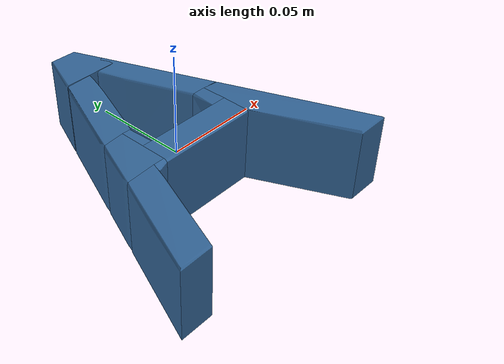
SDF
<?xml version='1.0' encoding='UTF-8'?>
<!-- This SDF was autogenerated by obj_to_drake_sdf.py -->
<sdf version="1.7">
  <model name="A_centered">
    <link name="A_centered">
      <inertial>
        <pose>0 0 0 0 0 0</pose>
        <mass>0.05</mass>
        <inertia>
          <ixx>8.1518702e-05</ixx>
          <iyy>5.8253042e-05</iyy>
          <izz>0.00012665386</izz>
          <ixy>3.1575243e-07</ixy>
          <ixz>-3.5979168e-12</ixz>
          <iyz>-5.9460613e-13</iyz>
        </inertia>
      </inertial>
      <visual name="convex_0">
        <pose>0 0 0 0 0 0</pose>
        <geometry>
          <mesh>
            <uri>A_centered_convex_0.obj</uri>
          </mesh>
        </geometry>
        <material>
          <diffuse>0.19607843137254902 0.39215686274509803 0.5882352941176471 1</diffuse>
        </material>
      </visual>
      <collision name="convex_0_volume">
        <pose>0 0 0 0 0 0</pose>
        <geometry>
          <mesh>
            <uri>A_centered_convex_0.obj</uri>
          </mesh>
        </geometry>
        <drake:proximity_properties xmlns:drake="uri:drake">
          <drake:compliant_hydroelastic/>
          <drake:hydroelastic_modulus> 3.0e7 </drake:hydroelastic_modulus>
          <drake:mesh_resolution_hint> 0.02 </drake:mesh_resolution_hint>
          <drake:hunt_crossley_dissipation>10</drake:hunt_crossley_dissipation>
          <drake:mu_dynamic>0.3</drake:mu_dynamic>
        </drake:proximity_properties>
      </collision>
      <visual name="convex_1">
        <pose>0 0 0 0 0 0</pose>
        <geometry>
          <mesh>
            <uri>A_centered_convex_1.obj</uri>
          </mesh>
        </geometry>
        <material>
          <diffuse>0.19607843137254902 0.39215686274509803 0.5882352941176471 1</diffuse>
        </material>
      </visual>
      <collision name="convex_1_volume">
        <pose>0 0 0 0 0 0</pose>
        <geometry>
          <mesh>
            <uri>A_centered_convex_1.obj</uri>
          </mesh>
        </geometry>
        <drake:proximity_properties xmlns:drake="uri:drake">
          <drake:compliant_hydroelastic/>
          <drake:hydroelastic_modulus> 3.0e7 </drake:hydroelastic_modulus>
          <drake:mesh_resolution_hint> 0.02 </drake:mesh_resolution_hint>
          <drake:hunt_crossley_dissipation>10</drake:hunt_crossley_dissipation>
          <drake:mu_dynamic>0.3</drake:mu_dynamic>
        </drake:proximity_properties>
      </collision>
      <visual name="convex_2">
        <pose>0 0 0 0 0 0</pose>
        <geometry>
          <mesh>
            <uri>A_centered_convex_2.obj</uri>
          </mesh>
        </geometry>
        <material>
          <diffuse>0.19607843137254902 0.39215686274509803 0.5882352941176471 1</diffuse>
        </material>
      </visual>
      <collision name="convex_2_volume">
        <pose>0 0 0 0 0 0</pose>
        <geometry>
          <mesh>
            <uri>A_centered_convex_2.obj</uri>
          </mesh>
        </geometry>
        <drake:proximity_properties xmlns:drake="uri:drake">
          <drake:compliant_hydroelastic/>
          <drake:hydroelastic_modulus> 3.0e7 </drake:hydroelastic_modulus>
          <drake:mesh_resolution_hint> 0.02 </drake:mesh_resolution_hint>
          <drake:hunt_crossley_dissipation>10</drake:hunt_crossley_dissipation>
          <drake:mu_dynamic>0.3</drake:mu_dynamic>
        </drake:proximity_properties>
      </collision>
      <visual name="convex_3">
        <pose>0 0 0 0 0 0</pose>
        <geometry>
          <mesh>
            <uri>A_centered_convex_3.obj</uri>
          </mesh>
        </geometry>
        <material>
          <diffuse>0.19607843137254902 0.39215686274509803 0.5882352941176471 1</diffuse>
        </material>
      </visual>
      <collision name="convex_3_volume">
        <pose>0 0 0 0 0 0</pose>
        <geometry>
          <mesh>
            <uri>A_centered_convex_3.obj</uri>
          </mesh>
        </geometry>
        <drake:proximity_properties xmlns:drake="uri:drake">
          <drake:compliant_hydroelastic/>
          <drake:hydroelastic_modulus> 3.0e7 </drake:hydroelastic_modulus>
          <drake:mesh_resolution_hint> 0.02 </drake:mesh_resolution_hint>
          <drake:hunt_crossley_dissipation>10</drake:hunt_crossley_dissipation>
          <drake:mu_dynamic>0.3</drake:mu_dynamic>
        </drake:proximity_properties>
      </collision>
      <visual name="convex_4">
        <pose>0 0 0 0 0 0</pose>
        <geometry>
          <mesh>
            <uri>A_centered_convex_4.obj</uri>
          </mesh>
        </geometry>
        <material>
          <diffuse>0.19607843137254902 0.39215686274509803 0.5882352941176471 1</diffuse>
        </material>
      </visual>
      <collision name="convex_4_volume">
        <pose>0 0 0 0 0 0</pose>
        <geometry>
          <mesh>
            <uri>A_centered_convex_4.obj</uri>
          </mesh>
        </geometry>
        <drake:proximity_properties xmlns:drake="uri:drake">
          <drake:compliant_hydroelastic/>
          <drake:hydroelastic_modulus> 3.0e7 </drake:hydroelastic_modulus>
          <drake:mesh_resolution_hint> 0.02 </drake:mesh_resolution_hint>
          <drake:hunt_crossley_dissipation>10</drake:hunt_crossley_dissipation>
          <drake:mu_dynamic>0.3</drake:mu_dynamic>
        </drake:proximity_properties>
      </collision>
      <visual name="convex_5">
        <pose>0 0 0 0 0 0</pose>
        <geometry>
          <mesh>
            <uri>A_centered_convex_5.obj</uri>
          </mesh>
        </geometry>
        <material>
          <diffuse>0.19607843137254902 0.39215686274509803 0.5882352941176471 1</diffuse>
        </material>
      </visual>
      <collision name="convex_5_volume">
        <pose>0 0 0 0 0 0</pose>
        <geometry>
          <mesh>
            <uri>A_centered_convex_5.obj</uri>
          </mesh>
        </geometry>
        <drake:proximity_properties xmlns:drake="uri:drake">
          <drake:compliant_hydroelastic/>
          <drake:hydroelastic_modulus> 3.0e7 </drake:hydroelastic_modulus>
          <drake:mesh_resolution_hint> 0.02 </drake:mesh_resolution_hint>
          <drake:hunt_crossley_dissipation>10</drake:hunt_crossley_dissipation>
          <drake:mu_dynamic>0.3</drake:mu_dynamic>
        </drake:proximity_properties>
      </collision>
      <visual name="convex_6">
        <pose>0 0 0 0 0 0</pose>
        <geometry>
          <mesh>
            <uri>A_centered_convex_6.obj</uri>
          </mesh>
        </geometry>
        <material>
          <diffuse>0.19607843137254902 0.39215686274509803 0.5882352941176471 1</diffuse>
        </material>
      </visual>
      <collision name="convex_6_volume">
        <pose>0 0 0 0 0 0</pose>
        <geometry>
          <mesh>
            <uri>A_centered_convex_6.obj</uri>
          </mesh>
        </geometry>
        <drake:proximity_properties xmlns:drake="uri:drake">
          <drake:compliant_hydroelastic/>
          <drake:hydroelastic_modulus> 3.0e7 </drake:hydroelastic_modulus>
          <drake:mesh_resolution_hint> 0.02 </drake:mesh_resolution_hint>
          <drake:hunt_crossley_dissipation>10</drake:hunt_crossley_dissipation>
          <drake:mu_dynamic>0.3</drake:mu_dynamic>
        </drake:proximity_properties>
      </collision>
      <visual name="convex_7">
        <pose>0 0 0 0 0 0</pose>
        <geometry>
          <mesh>
            <uri>A_centered_convex_7.obj</uri>
          </mesh>
        </geometry>
        <material>
          <diffuse>0.19607843137254902 0.39215686274509803 0.5882352941176471 1</diffuse>
        </material>
      </visual>
      <collision name="convex_7_volume">
        <pose>0 0 0 0 0 0</pose>
        <geometry>
          <mesh>
            <uri>A_centered_convex_7.obj</uri>
          </mesh>
        </geometry>
        <drake:proximity_properties xmlns:drake="uri:drake">
          <drake:compliant_hydroelastic/>
          <drake:hydroelastic_modulus> 3.0e7 </drake:hydroelastic_modulus>
          <drake:mesh_resolution_hint> 0.02 </drake:mesh_resolution_hint>
          <drake:hunt_crossley_dissipation>10</drake:hunt_crossley_dissipation>
          <drake:mu_dynamic>0.3</drake:mu_dynamic>
        </drake:proximity_properties>
      </collision>
      <visual name="convex_8">
        <pose>0 0 0 0 0 0</pose>
        <geometry>
          <mesh>
            <uri>A_centered_convex_8.obj</uri>
          </mesh>
        </geometry>
        <material>
          <diffuse>0.19607843137254902 0.39215686274509803 0.5882352941176471 1</diffuse>
        </material>
      </visual>
      <collision name="convex_8_volume">
        <pose>0 0 0 0 0 0</pose>
        <geometry>
          <mesh>
            <uri>A_centered_convex_8.obj</uri>
          </mesh>
        </geometry>
        <drake:proximity_properties xmlns:drake="uri:drake">
          <drake:compliant_hydroelastic/>
          <drake:hydroelastic_modulus> 3.0e7 </drake:hydroelastic_modulus>
          <drake:mesh_resolution_hint> 0.02 </drake:mesh_resolution_hint>
          <drake:hunt_crossley_dissipation>10</drake:hunt_crossley_dissipation>
          <drake:mu_dynamic>0.3</drake:mu_dynamic>
        </drake:proximity_properties>
      </collision>
      <visual name="convex_9">
        <pose>0 0 0 0 0 0</pose>
        <geometry>
          <mesh>
            <uri>A_centered_convex_9.obj</uri>
          </mesh>
        </geometry>
        <material>
          <diffuse>0.19607843137254902 0.39215686274509803 0.5882352941176471 1</diffuse>
        </material>
      </visual>
      <collision name="convex_9_volume">
        <pose>0 0 0 0 0 0</pose>
        <geometry>
          <mesh>
            <uri>A_centered_convex_9.obj</uri>
          </mesh>
        </geometry>
        <drake:proximity_properties xmlns:drake="uri:drake">
          <drake:compliant_hydroelastic/>
          <drake:hydroelastic_modulus> 3.0e7 </drake:hydroelastic_modulus>
          <drake:mesh_resolution_hint> 0.02 </drake:mesh_resolution_hint>
          <drake:hunt_crossley_dissipation>10</drake:hunt_crossley_dissipation>
          <drake:mu_dynamic>0.3</drake:mu_dynamic>
        </drake:proximity_properties>
      </collision>
    </link>
  </model>
</sdf>
